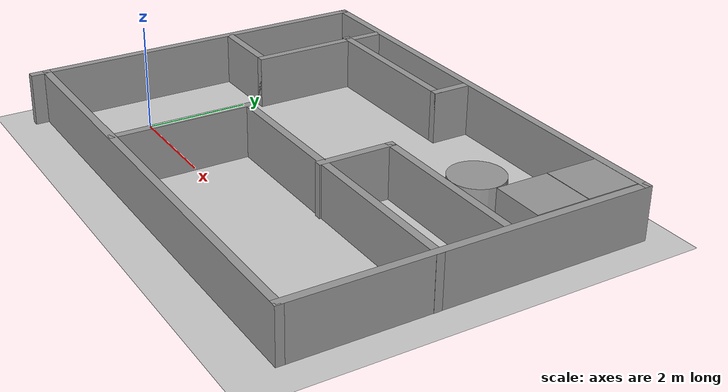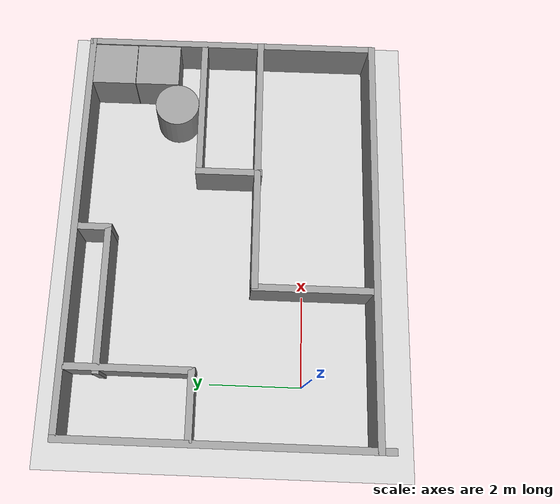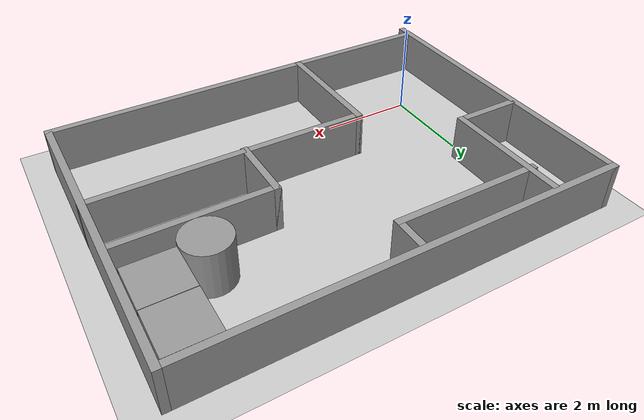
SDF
<sdf version="1.7">
 <world name="default">
  <light name="sun" type="directional">
   <pose>0 0 10 0 -0 0</pose>
   <diffuse>0.8 0.8 0.8 1</diffuse>
   <specular>0.2 0.2 0.2 1</specular>
   <attenuation>
    <range>1000</range>
    <constant>0.9</constant>
    <linear>0.01</linear>
    <quadratic>0.001</quadratic>
   </attenuation>
   <direction>-0.5 0.1 -0.9</direction>
   <spot><inner_angle>0</inner_angle><outer_angle>0</outer_angle><falloff>0</falloff></spot>
  </light>
  <model name="ground_plane">
   <static>1</static>
   <link name="link">
    <collision name="collision">
     <geometry><plane><normal>0 0 1</normal><size>100 100</size></plane></geometry>
     <surface><friction><ode><mu>100</mu><mu2>50</mu2></ode></friction></surface>
    </collision>
    <visual name="visual">
     <cast_shadows>0</cast_shadows>
     <geometry><plane><normal>0 0 1</normal><size>100 100</size></plane></geometry>
     <material>
      <script><uri>file://media/materials/scripts/gazebo.material</uri><name>Gazebo/Grey</name></script>
     </material>
    </visual>
   </link>
  </model>
  <gravity>0 0 -9.8</gravity>
  <magnetic_field>6e-06 2.3e-05 -4.2e-05</magnetic_field>
  <atmosphere type="adiabatic"/>
  <physics type="ode">
   <max_step_size>0.001</max_step_size>
   <real_time_factor>1</real_time_factor>
   <real_time_update_rate>1000</real_time_update_rate>
  </physics>
  <scene><ambient>0.4 0.4 0.4 1</ambient><background>0.7 0.7 0.7 1</background><shadows>1</shadows></scene>
  <spherical_coordinates>
   <surface_model>EARTH_WGS84</surface_model>
   <latitude_deg>0</latitude_deg>
   <longitude_deg>0</longitude_deg>
   <elevation>0</elevation>
   <heading_deg>0</heading_deg>
  </spherical_coordinates>
  <model name="test7">
   <pose>3.29182 1.65794 0 0 -0 0</pose>
   <link name="Wall_0">
    <collision name="Wall_0_Collision">
     <geometry><box><size>7 0.15 1</size></box></geometry>
     <pose>0 0 0.5 0 -0 0</pose>
    </collision>
    <visual name="Wall_0_Visual">
     <pose>0 0 0.5 0 -0 0</pose>
     <geometry><box><size>7 0.15 1</size></box></geometry>
     <material>
      <script><uri>file://media/materials/scripts/gazebo.material</uri><name>Gazebo/Grey</name></script>
      <ambient>1 1 1 1</ambient>
     </material>
     <meta><layer>0</layer></meta>
    </visual>
    <pose>-4.5515 0 0 0 -0 1.5708</pose>
   </link>
   <link name="Wall_1">
    <collision name="Wall_1_Collision">
     <geometry><box><size>9.25 0.15 1</size></box></geometry>
     <pose>0 0 0.5 0 -0 0</pose>
    </collision>
    <visual name="Wall_1_Visual">
     <pose>0 0 0.5 0 -0 0</pose>
     <geometry><box><size>9.25 0.15 1</size></box></geometry>
     <material>
      <script><uri>file://media/materials/scripts/gazebo.material</uri><name>Gazebo/Grey</name></script>
      <ambient>1 1 1 1</ambient>
     </material>
     <meta><layer>0</layer></meta>
    </visual>
    <pose>-0.0015 3.425 0 0 -0 0</pose>
   </link>
   <link name="Wall_11">
    <collision name="Wall_11_Collision">
     <geometry><box><size>1.5 0.15 1</size></box></geometry>
     <pose>0 0 0.5 0 -0 0</pose>
    </collision>
    <visual name="Wall_11_Visual">
     <pose>0 0 0.5 0 -0 0</pose>
     <geometry><box><size>1.5 0.15 1</size></box></geometry>
     <material>
      <script><uri>file://media/materials/scripts/gazebo.material</uri><name>Gazebo/Grey</name></script>
      <ambient>1 1 1 1</ambient>
     </material>
     <meta><layer>0</layer></meta>
    </visual>
    <pose>-3.7795 0.698 0 0 -0 0</pose>
   </link>
   <link name="Wall_12">
    <collision name="Wall_12_Collision">
     <geometry><box><size>2.75 0.15 1</size></box></geometry>
     <pose>0 0 0.5 0 -0 0</pose>
    </collision>
    <visual name="Wall_12_Visual">
     <pose>0 0 0.5 0 -0 0</pose>
     <geometry><box><size>2.75 0.15 1</size></box></geometry>
     <material>
      <script><uri>file://media/materials/scripts/gazebo.material</uri><name>Gazebo/Grey</name></script>
      <ambient>1 1 1 1</ambient>
     </material>
     <meta><layer>0</layer></meta>
    </visual>
    <pose>-3.1045 1.998 0 0 -0 1.5708</pose>
   </link>
   <link name="Wall_14">
    <collision name="Wall_14_Collision">
     <geometry><box><size>3.25 0.15 1</size></box></geometry>
     <pose>0 0 0.5 0 -0 0</pose>
    </collision>
    <visual name="Wall_14_Visual">
     <pose>0 0 0.5 0 -0 0</pose>
     <geometry><box><size>3.25 0.15 1</size></box></geometry>
     <material>
      <script><uri>file://media/materials/scripts/gazebo.material</uri><name>Gazebo/Grey</name></script>
      <ambient>1 1 1 1</ambient>
     </material>
     <meta><layer>0</layer></meta>
    </visual>
    <pose>-1.6205 2.678 0 0 -0 0</pose>
   </link>
   <link name="Wall_15">
    <collision name="Wall_15_Collision">
     <geometry><box><size>0.75 0.15 1</size></box></geometry>
     <pose>0 0 0.5 0 -0 0</pose>
    </collision>
    <visual name="Wall_15_Visual">
     <pose>0 0 0.5 0 -0 0</pose>
     <geometry><box><size>0.75 0.15 1</size></box></geometry>
     <material>
      <script><uri>file://media/materials/scripts/gazebo.material</uri><name>Gazebo/Grey</name></script>
      <ambient>1 1 1 1</ambient>
     </material>
     <meta><layer>0</layer></meta>
    </visual>
    <pose>-0.0705 2.978 0 0 -0 1.5708</pose>
   </link>
   <link name="Wall_2">
    <collision name="Wall_2_Collision">
     <geometry><box><size>6.75 0.15 1</size></box></geometry>
     <pose>0 0 0.5 0 -0 0</pose>
    </collision>
    <visual name="Wall_2_Visual">
     <pose>0 0 0.5 0 -0 0</pose>
     <geometry><box><size>6.75 0.15 1</size></box></geometry>
     <material>
      <script><uri>file://media/materials/scripts/gazebo.material</uri><name>Gazebo/Grey</name></script>
      <ambient>1 1 1 1</ambient>
     </material>
     <meta><layer>0</layer></meta>
    </visual>
    <pose>4.5485 0.125 0 0 -0 -1.5708</pose>
   </link>
   <link name="Wall_3">
    <collision name="Wall_3_Collision">
     <geometry><box><size>9.25 0.15 1</size></box></geometry>
     <pose>0 0 0.5 0 -0 0</pose>
    </collision>
    <visual name="Wall_3_Visual">
     <pose>0 0 0.5 0 -0 0</pose>
     <geometry><box><size>9.25 0.15 1</size></box></geometry>
     <material>
      <script><uri>file://media/materials/scripts/gazebo.material</uri><name>Gazebo/Grey</name></script>
      <ambient>1 1 1 1</ambient>
     </material>
     <meta><layer>0</layer></meta>
    </visual>
    <pose>-0.0015 -3.175 0 0 -0 3.14159</pose>
   </link>
   <link name="Wall_5">
    <collision name="Wall_5_Collision">
     <geometry><box><size>2.75 0.15 1</size></box></geometry>
     <pose>0 0 0.5 0 -0 0</pose>
    </collision>
    <visual name="Wall_5_Visual">
     <pose>0 0 0.5 0 -0 0</pose>
     <geometry><box><size>2.75 0.15 1</size></box></geometry>
     <material>
      <script><uri>file://media/materials/scripts/gazebo.material</uri><name>Gazebo/Grey</name></script>
      <ambient>1 1 1 1</ambient>
     </material>
     <meta><layer>0</layer></meta>
    </visual>
    <pose>-1.2985 -1.854 0 0 -0 1.5708</pose>
   </link>
   <link name="Wall_6">
    <collision name="Wall_6_Collision">
     <geometry><box><size>6 0.15 1</size></box></geometry>
     <pose>0 0 0.5 0 -0 0</pose>
    </collision>
    <visual name="Wall_6_Visual">
     <pose>0 0 0.5 0 -0 0</pose>
     <geometry><box><size>6 0.15 1</size></box></geometry>
     <material>
      <script><uri>file://media/materials/scripts/gazebo.material</uri><name>Gazebo/Grey</name></script>
      <ambient>1 1 1 1</ambient>
     </material>
     <meta><layer>0</layer></meta>
    </visual>
    <pose>1.6265 -0.554 0 0 -0 0</pose>
   </link>
   <link name="Wall_8">
    <collision name="Wall_8_Collision">
     <geometry><box><size>1.5 0.15 1</size></box></geometry>
     <pose>0 0 0.5 0 -0 0</pose>
    </collision>
    <visual name="Wall_8_Visual">
     <pose>0 0 0.5 0 -0 0</pose>
     <geometry><box><size>1.5 0.15 1</size></box></geometry>
     <material>
      <script><uri>file://media/materials/scripts/gazebo.material</uri><name>Gazebo/Grey</name></script>
      <ambient>1 1 1 1</ambient>
     </material>
     <meta><layer>0</layer></meta>
    </visual>
    <pose>1.3235 0.089 0 0 -0 1.5708</pose>
   </link>
   <link name="Wall_9">
    <collision name="Wall_9_Collision">
     <geometry><box><size>3.25 0.15 1</size></box></geometry>
     <pose>0 0 0.5 0 -0 0</pose>
    </collision>
    <visual name="Wall_9_Visual">
     <pose>0 0 0.5 0 -0 0</pose>
     <geometry><box><size>3.25 0.15 1</size></box></geometry>
     <material>
      <script><uri>file://media/materials/scripts/gazebo.material</uri><name>Gazebo/Grey</name></script>
      <ambient>1 1 1 1</ambient>
     </material>
     <meta><layer>0</layer></meta>
    </visual>
    <pose>2.8735 0.764 0 0 -0 0</pose>
   </link>
   <static>1</static>
  </model>
  <model name="unit_box">
   <pose>7.24528 4.50643 0.499995 0 -1e-05 -0.002263</pose>
   <link name="link">
    <inertial>
     <mass>1</mass>
     <inertia>
      <ixx>0.166667</ixx>
      <ixy>0</ixy>
      <ixz>0</ixz>
      <iyy>0.166667</iyy>
      <iyz>0</iyz>
      <izz>0.166667</izz>
     </inertia>
    </inertial>
    <collision name="collision"><geometry><box><size>1 1 1</size></box></geometry></collision>
    <visual name="visual">
     <geometry><box><size>1 1 1</size></box></geometry>
     <material>
      <script><name>Gazebo/Grey</name><uri>file://media/materials/scripts/gazebo.material</uri></script>
     </material>
    </visual>
   </link>
  </model>
  <model name="unit_box_0">
   <pose>7.24687 3.49811 0.499995 -1e-05 -0 0</pose>
   <link name="link">
    <inertial>
     <mass>1</mass>
     <inertia>
      <ixx>0.166667</ixx>
      <ixy>0</ixy>
      <ixz>0</ixz>
      <iyy>0.166667</iyy>
      <iyz>0</iyz>
      <izz>0.166667</izz>
     </inertia>
    </inertial>
    <collision name="collision"><geometry><box><size>1 1 1</size></box></geometry></collision>
    <visual name="visual">
     <geometry><box><size>1 1 1</size></box></geometry>
     <material>
      <script><name>Gazebo/Grey</name><uri>file://media/materials/scripts/gazebo.material</uri></script>
     </material>
    </visual>
   </link>
  </model>
  <model name="unit_cylinder">
   <pose>6.23487 2.99695 0.49999 0 -0 0</pose>
   <link name="link">
    <inertial>
     <mass>1</mass>
     <inertia><ixx>0.145833</ixx><ixy>0</ixy><ixz>0</ixz><iyy>0.145833</iyy><iyz>0</iyz><izz>0.125</izz></inertia>
    </inertial>
    <collision name="collision">
     <geometry><cylinder><radius>0.5</radius><length>1</length></cylinder></geometry>
    </collision>
    <visual name="visual">
     <geometry><cylinder><radius>0.5</radius><length>1</length></cylinder></geometry>
     <material>
      <script><name>Gazebo/Grey</name><uri>file://media/materials/scripts/gazebo.material</uri></script>
     </material>
    </visual>
   </link>
  </model>
 </world>
</sdf>
